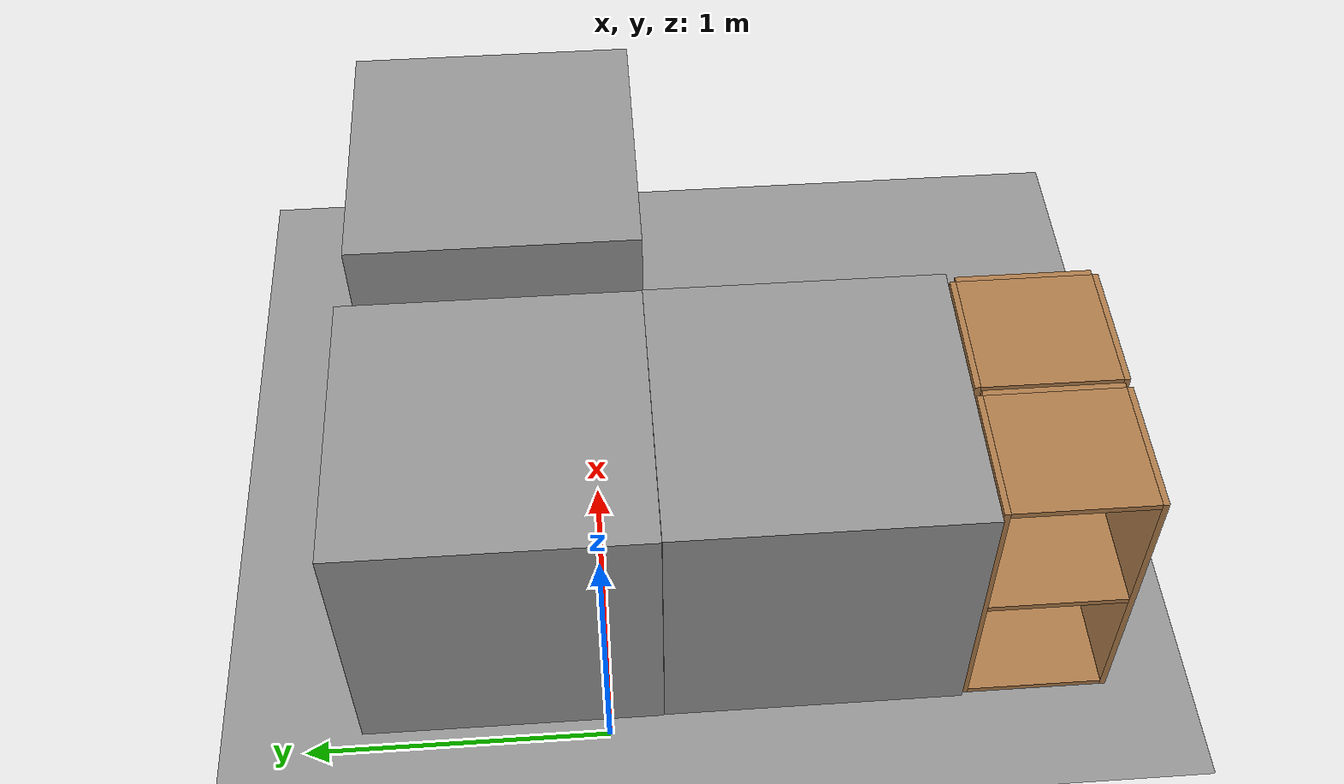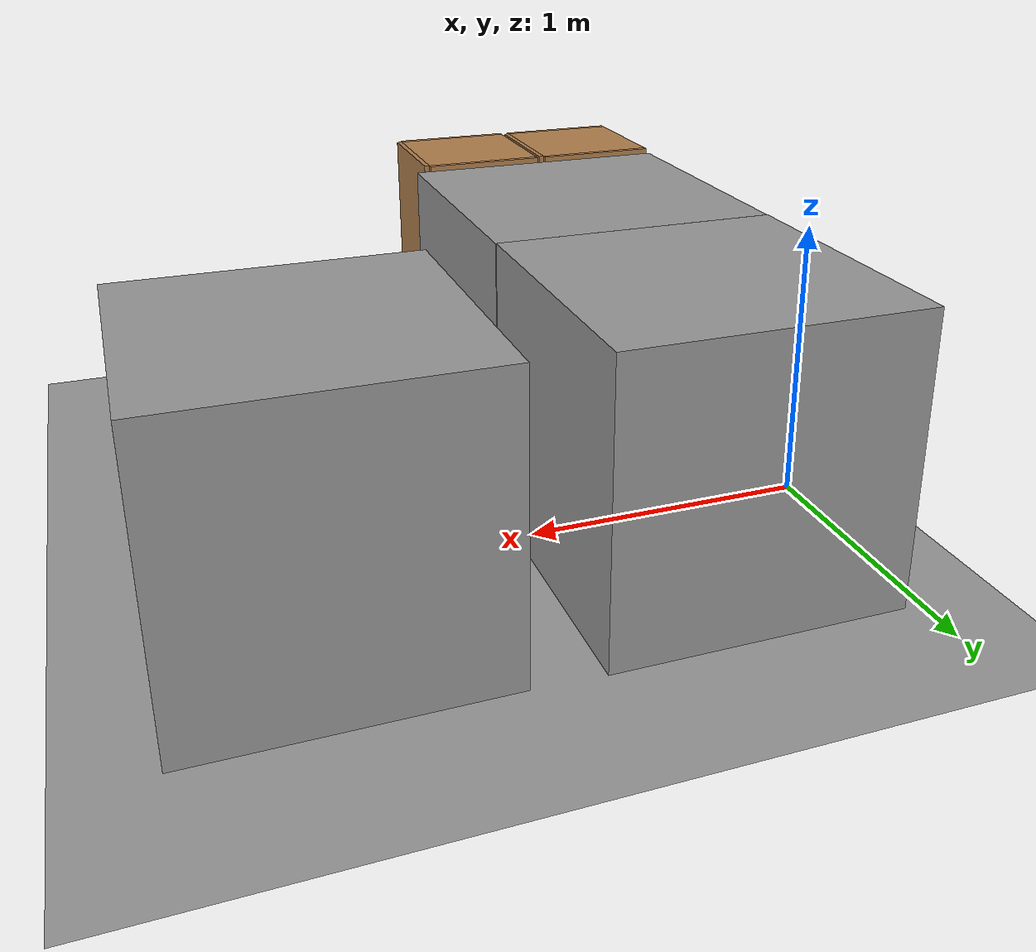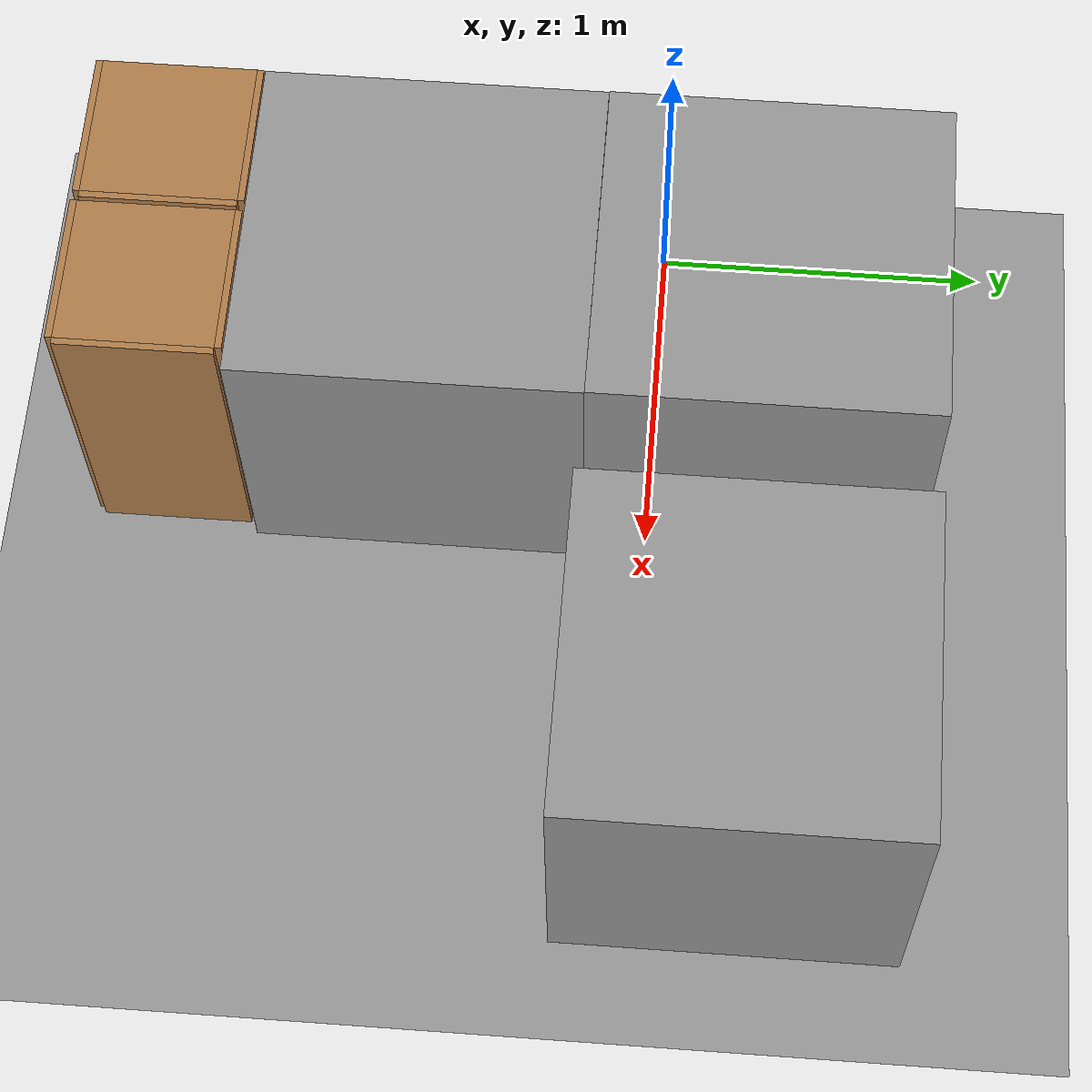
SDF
<sdf version="1.4">
 <world name="default">
  <model name="ground_plane_0">
   <static>1</static>
   <link name="link">
    <collision name="collision">
     <geometry><plane><normal>0 0 1</normal><size>100 100</size></plane></geometry>
     <surface><friction><ode><mu>100</mu><mu2>50</mu2></ode></friction></surface>
    </collision>
    <visual name="visual">
     <cast_shadows>0</cast_shadows>
     <geometry><plane><normal>0 0 1</normal><size>100 100</size></plane></geometry>
     <material>
      <script><uri>file://media/materials/scripts/gazebo.material</uri><name>Gazebo/Grey</name></script>
     </material>
    </visual>
    <velocity_decay><linear>0</linear><angular>0</angular></velocity_decay>
   </link>
   <pose>0.497681 0 0 0 -0 0</pose>
  </model>
  <model name="unit_box_3_0">
   <pose>0.558438 0.317764 0.5 0 -0 -0.001057</pose>
   <link name="link">
    <inertial>
     <mass>1</mass>
     <inertia><ixx>1</ixx><ixy>0</ixy><ixz>0</ixz><iyy>1</iyy><iyz>0</iyz><izz>1</izz></inertia>
    </inertial>
    <collision name="collision"><geometry><box><size>1 1 1</size></box></geometry></collision>
    <visual name="visual">
     <geometry><box><size>1 1 1</size></box></geometry>
     <material>
      <script><uri>file://media/materials/scripts/gazebo.material</uri><name>Gazebo/Grey</name></script>
     </material>
    </visual>
    <velocity_decay><linear>0</linear><angular>0</angular></velocity_decay>
   </link>
   <static>0</static>
  </model>
  <model name="unit_box_5_0">
   <pose>0.560372 -0.682679 0.5 0 -0 1.57055</pose>
   <link name="link">
    <inertial>
     <mass>1</mass>
     <inertia><ixx>1</ixx><ixy>0</ixy><ixz>0</ixz><iyy>1</iyy><iyz>0</iyz><izz>1</izz></inertia>
    </inertial>
    <collision name="collision"><geometry><box><size>1 1 1</size></box></geometry></collision>
    <visual name="visual">
     <geometry><box><size>1 1 1</size></box></geometry>
     <material>
      <script><uri>file://media/materials/scripts/gazebo.material</uri><name>Gazebo/Grey</name></script>
     </material>
    </visual>
    <velocity_decay><linear>0</linear><angular>0</angular></velocity_decay>
   </link>
   <static>0</static>
  </model>
  <model name="cabinet_11">
   <static>1</static>
   <link name="cabinet_bottom_plate">
    <inertial>
     <pose>0 0 -1 0 -0 0</pose>
     <inertia><ixx>2.05</ixx><ixy>0</ixy><ixz>0</ixz><iyy>2.05</iyy><iyz>0</iyz><izz>2.05</izz></inertia>
     <mass>25</mass>
    </inertial>
    <collision name="cabinet_bottom_plate_geom">
     <pose>0 0 0.01 0 -0 0</pose>
     <geometry><box><size>0.45 0.45 0.02</size></box></geometry>
    </collision>
    <visual name="cabinet_bottom_plate_geom_visual">
     <pose>0 0 0.01 0 -0 0</pose>
     <geometry><box><size>0.45 0.45 0.02</size></box></geometry>
     <material>
      <script><uri>file://media/materials/scripts/gazebo.material</uri><name>Gazebo/Wood</name></script>
     </material>
    </visual>
    <collision name="cabinet_bottom_plate_geom_cabinet_back_plate">
     <pose>0.235 0 0.51 0 -0 0</pose>
     <geometry><box><size>0.02 0.45 1.02</size></box></geometry>
    </collision>
    <visual name="cabinet_bottom_plate_geom_cabinet_back_plate_visual">
     <pose>0.235 0 0.51 0 -0 0</pose>
     <geometry><box><size>0.02 0.45 1.02</size></box></geometry>
     <material>
      <script><uri>file://media/materials/scripts/gazebo.material</uri><name>Gazebo/Wood</name></script>
     </material>
    </visual>
    <collision name="cabinet_bottom_plate_geom_cabinet_left_plate">
     <pose>0 0.235 0.51 0 -0 0</pose>
     <geometry><box><size>0.45 0.02 1.02</size></box></geometry>
    </collision>
    <visual name="cabinet_bottom_plate_geom_cabinet_left_plate_visual">
     <pose>0 0.235 0.51 0 -0 0</pose>
     <geometry><box><size>0.45 0.02 1.02</size></box></geometry>
     <material>
      <script><uri>file://media/materials/scripts/gazebo.material</uri><name>Gazebo/Wood</name></script>
     </material>
    </visual>
    <collision name="cabinet_bottom_plate_geom_cabinet_middle_plate">
     <pose>0 0 0.51 0 -0 0</pose>
     <geometry><box><size>0.45 0.45 0.02</size></box></geometry>
    </collision>
    <visual name="cabinet_bottom_plate_geom_cabinet_middle_plate_visual">
     <pose>0 0 0.51 0 -0 0</pose>
     <geometry><box><size>0.45 0.45 0.02</size></box></geometry>
     <material>
      <script><uri>file://media/materials/scripts/gazebo.material</uri><name>Gazebo/Wood</name></script>
     </material>
    </visual>
    <collision name="cabinet_bottom_plate_geom_cabinet_right_plate">
     <pose>0 -0.235 0.51 0 -0 0</pose>
     <geometry><box><size>0.45 0.02 1.02</size></box></geometry>
    </collision>
    <visual name="cabinet_bottom_plate_geom_cabinet_right_plate_visual">
     <pose>0 -0.235 0.51 0 -0 0</pose>
     <geometry><box><size>0.45 0.02 1.02</size></box></geometry>
     <material>
      <script><uri>file://media/materials/scripts/gazebo.material</uri><name>Gazebo/Wood</name></script>
     </material>
    </visual>
    <collision name="cabinet_bottom_plate_geom_cabinet_top_plate">
     <pose>0 0 1.01 0 -0 0</pose>
     <geometry><box><size>0.45 0.45 0.02</size></box></geometry>
    </collision>
    <visual name="cabinet_bottom_plate_geom_cabinet_top_plate_visual">
     <pose>0 0 1.01 0 -0 0</pose>
     <geometry><box><size>0.45 0.45 0.02</size></box></geometry>
     <material>
      <script><uri>file://media/materials/scripts/gazebo.material</uri><name>Gazebo/Wood</name></script>
     </material>
    </visual>
    <velocity_decay><linear>0</linear><angular>0</angular></velocity_decay>
   </link>
   <pose>0.779343 -1.42868 0 0 -0 0</pose>
  </model>
  <model name="cabinet_12">
   <static>1</static>
   <link name="cabinet_bottom_plate">
    <inertial>
     <pose>0 0 -1 0 -0 0</pose>
     <inertia><ixx>2.05</ixx><ixy>0</ixy><ixz>0</ixz><iyy>2.05</iyy><iyz>0</iyz><izz>2.05</izz></inertia>
     <mass>25</mass>
    </inertial>
    <collision name="cabinet_bottom_plate_geom">
     <pose>0 0 0.01 0 -0 0</pose>
     <geometry><box><size>0.45 0.45 0.02</size></box></geometry>
    </collision>
    <visual name="cabinet_bottom_plate_geom_visual">
     <pose>0 0 0.01 0 -0 0</pose>
     <geometry><box><size>0.45 0.45 0.02</size></box></geometry>
     <material>
      <script><uri>file://media/materials/scripts/gazebo.material</uri><name>Gazebo/Wood</name></script>
     </material>
    </visual>
    <collision name="cabinet_bottom_plate_geom_cabinet_back_plate">
     <pose>0.235 0 0.51 0 -0 0</pose>
     <geometry><box><size>0.02 0.45 1.02</size></box></geometry>
    </collision>
    <visual name="cabinet_bottom_plate_geom_cabinet_back_plate_visual">
     <pose>0.235 0 0.51 0 -0 0</pose>
     <geometry><box><size>0.02 0.45 1.02</size></box></geometry>
     <material>
      <script><uri>file://media/materials/scripts/gazebo.material</uri><name>Gazebo/Wood</name></script>
     </material>
    </visual>
    <collision name="cabinet_bottom_plate_geom_cabinet_left_plate">
     <pose>0 0.235 0.51 0 -0 0</pose>
     <geometry><box><size>0.45 0.02 1.02</size></box></geometry>
    </collision>
    <visual name="cabinet_bottom_plate_geom_cabinet_left_plate_visual">
     <pose>0 0.235 0.51 0 -0 0</pose>
     <geometry><box><size>0.45 0.02 1.02</size></box></geometry>
     <material>
      <script><uri>file://media/materials/scripts/gazebo.material</uri><name>Gazebo/Wood</name></script>
     </material>
    </visual>
    <collision name="cabinet_bottom_plate_geom_cabinet_middle_plate">
     <pose>0 0 0.51 0 -0 0</pose>
     <geometry><box><size>0.45 0.45 0.02</size></box></geometry>
    </collision>
    <visual name="cabinet_bottom_plate_geom_cabinet_middle_plate_visual">
     <pose>0 0 0.51 0 -0 0</pose>
     <geometry><box><size>0.45 0.45 0.02</size></box></geometry>
     <material>
      <script><uri>file://media/materials/scripts/gazebo.material</uri><name>Gazebo/Wood</name></script>
     </material>
    </visual>
    <collision name="cabinet_bottom_plate_geom_cabinet_right_plate">
     <pose>0 -0.235 0.51 0 -0 0</pose>
     <geometry><box><size>0.45 0.02 1.02</size></box></geometry>
    </collision>
    <visual name="cabinet_bottom_plate_geom_cabinet_right_plate_visual">
     <pose>0 -0.235 0.51 0 -0 0</pose>
     <geometry><box><size>0.45 0.02 1.02</size></box></geometry>
     <material>
      <script><uri>file://media/materials/scripts/gazebo.material</uri><name>Gazebo/Wood</name></script>
     </material>
    </visual>
    <collision name="cabinet_bottom_plate_geom_cabinet_top_plate">
     <pose>0 0 1.01 0 -0 0</pose>
     <geometry><box><size>0.45 0.45 0.02</size></box></geometry>
    </collision>
    <visual name="cabinet_bottom_plate_geom_cabinet_top_plate_visual">
     <pose>0 0 1.01 0 -0 0</pose>
     <geometry><box><size>0.45 0.45 0.02</size></box></geometry>
     <material>
      <script><uri>file://media/materials/scripts/gazebo.material</uri><name>Gazebo/Wood</name></script>
     </material>
    </visual>
    <velocity_decay><linear>0</linear><angular>0</angular></velocity_decay>
   </link>
   <pose>0.296851 -1.42767 0 0 -0 0</pose>
  </model>
  <model name="unit_box_20">
   <pose>1.79113 0.304545 0.5 0 -0 0</pose>
   <link name="link">
    <inertial>
     <mass>1</mass>
     <inertia><ixx>1</ixx><ixy>0</ixy><ixz>0</ixz><iyy>1</iyy><iyz>0</iyz><izz>1</izz></inertia>
    </inertial>
    <collision name="collision"><geometry><box><size>1 1 1</size></box></geometry></collision>
    <visual name="visual">
     <geometry><box><size>1 1 1</size></box></geometry>
     <material>
      <script><uri>file://media/materials/scripts/gazebo.material</uri><name>Gazebo/Grey</name></script>
     </material>
    </visual>
    <velocity_decay><linear>0</linear><angular>0</angular></velocity_decay>
   </link>
   <static>0</static>
  </model>
 </world>
</sdf>
